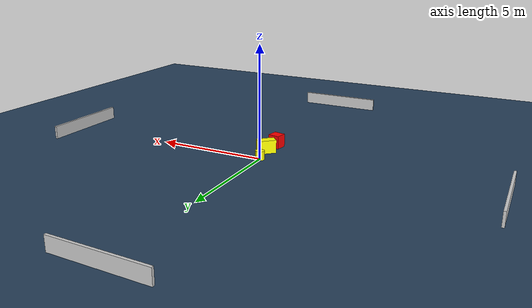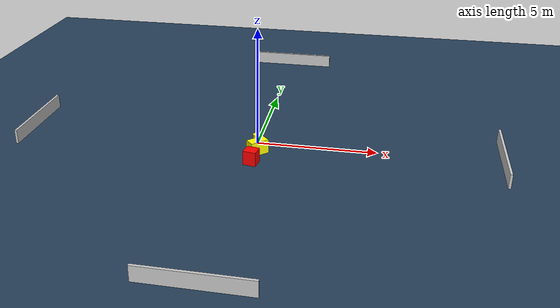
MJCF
<?xml version="1.0" ?>
<mujoco model="generated_environment">
  <option timestep="0.01" integrator="RK4" cone="elliptic"/>
  <default>
    <geom density="1"/>
  </default>
  <asset>
    <texture builtin="gradient" height="3072" name="skybox" rgb1="0.3 0.5 0.7" rgb2="0 0 0" type="skybox" width="512"/>
    <texture builtin="checker" height="300" name="groundplane" rgb1="0.2 0.3 0.4" rgb2="0.1 0.2 0.3" type="2d" width="300"/>
    <material name="groundplane" reflectance="0.2" texrepeat="5 5" texture="groundplane"/>
  </asset>
  <worldbody>
    <light dir="0 0 -1" directional="true" pos="0 0 1.5"/>
    <geom condim="3" friction="0.5 0.005 0.001" material="groundplane" name="floor" pos="0 0 0" size="0 0 0.05" type="plane"/>
    <body name="walls">
      <geom name="wall_1" condim="4" pos="-10.0 0.0 0.3" rgba="0.800000011920929 0.800000011920929 0.800000011920929 1.0" size="0.05 2.0 0.3" type="box"/>
      <geom name="wall_2" condim="4" pos="10.0 0.0 0.3" rgba="0.800000011920929 0.800000011920929 0.800000011920929 1.0" size="0.05 2.0 0.3" type="box"/>
      <geom name="wall_3" condim="4" pos="0.0 -10.0 0.3" rgba="0.800000011920929 0.800000011920929 0.800000011920929 1.0" size="2.0 0.05 0.3" type="box"/>
      <geom name="wall_4" condim="4" pos="0.0 10.0 0.3" rgba="0.800000011920929 0.800000011920929 0.800000011920929 1.0" size="2.0 0.05 0.3" type="box"/>
    </body>
    <body name="robot">
      <joint name="joint_x" type="slide" pos="0 0 0" axis="1 0 0"/>
      <joint name="joint_y" type="slide" pos="0 0 0" axis="0 1 0"/>
      <geom name="robot" type="cylinder" pos="0.0 0.0 0.2" size="0.2 0.2 0.0" mass="5.0" friction="1.0 0.005 0.0001" condim="4" rgba="1.0 1.0 0.0 1.0"/>
    </body>
    <body name="obstacle_1_movable">
      <geom name="obstacle_1_movable" condim="4" pos="0.16388358970505135 -0.9292359737554321 0.3" euler="0 0 223.87834374668827" friction="0.0 0.005 0.001" rgba="1.0 1.0 0.0 1.0" size="0.40572823331440944 0.2087236082257517 0.3" type="box" mass="0.1"/>
      <joint type="free"/>
    </body>
    <body name="obstacle_2_static">
      <geom name="obstacle_2_static" condim="4" pos="0.09383438987096186 -1.8346521529274475 0.3" euler="0 0 169.7850493050697" friction="0.0 0.005 0.001" rgba="1.0 0.0 0.0 1.0" size="0.265303049898299 0.2516746983792844 0.3" type="box"/>
    </body>
  </worldbody>
  <actuator>
    <motor name="actuator_x" joint="joint_x" gear="1" ctrlrange="-1 1"/>
    <motor name="actuator_y" joint="joint_y" gear="1" ctrlrange="-1 1"/>
  </actuator>
</mujoco>
